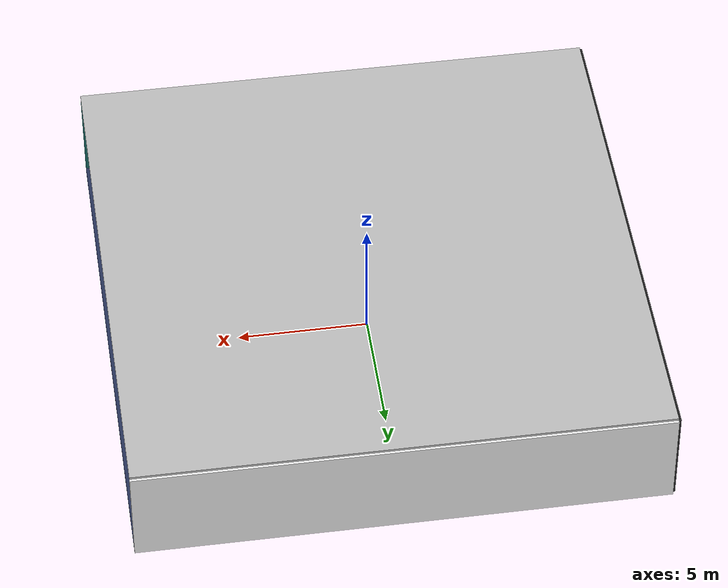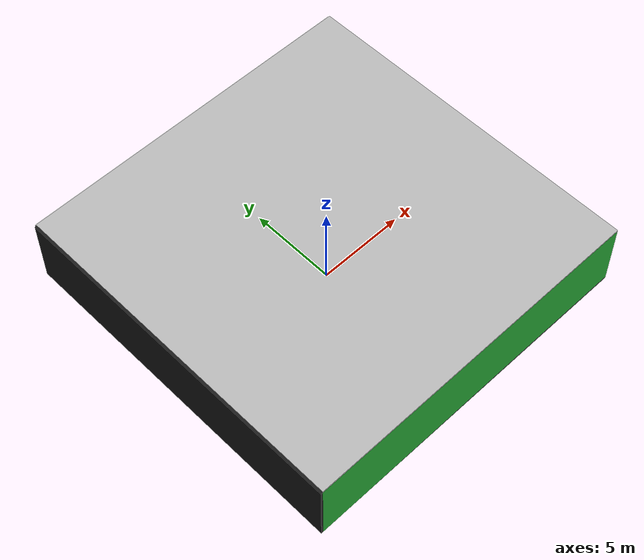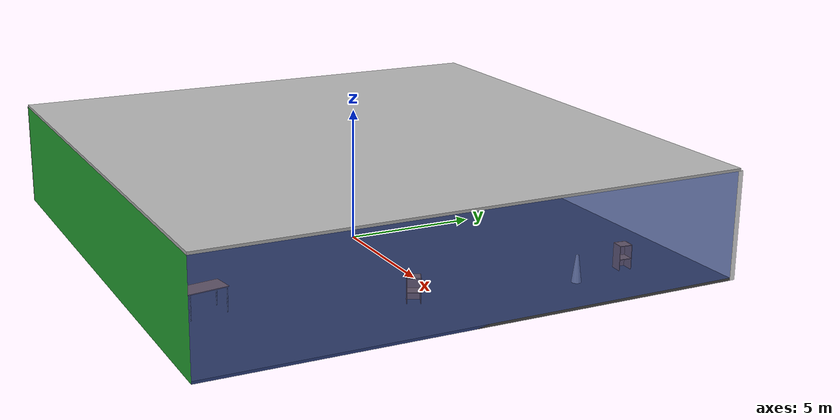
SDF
<sdf version="1.4">
 <world name="default">
  <physics type="ode">
   <max_step_size>0.001</max_step_size>
   <real_time_factor>1</real_time_factor>
   <real_time_update_rate>1000</real_time_update_rate>
   <gravity>0 0 -9.8</gravity>
  </physics>
  <scene><ambient>0.4 0.4 0.4 1</ambient><background>0.7 0.7 0.7 1</background><shadows>1</shadows></scene>
  <model name="Surrounding">
   <static>1</static>
   <link name="Ceiling">
    <collision name="Ceiling_Collision"><geometry><box><size>20 20 0.1</size></box></geometry></collision>
    <visual name="Ceiling_Visual">
     <geometry><box><size>20 20 0.1</size></box></geometry>
     <material>
      <script><uri>file://media/materials/scripts/gazebo.material</uri><name>Gazebo/PioneerBody</name></script>
     </material>
    </visual>
    <pose>0 0 4.05 0 0 0</pose>
   </link>
   <link name="Wall_South">
    <collision name="Wall_South_Collision">
     <geometry><box><size>20 0 4</size></box></geometry>
     <pose>0 0 2 0 -0 0</pose>
    </collision>
    <visual name="Wall_South_Visual">
     <pose>0 0 2 0 -0 0</pose>
     <geometry><box><size>20 0 4</size></box></geometry>
     <material>
      <script><uri>file://media/materials/scripts/gazebo.material</uri><name>Gazebo/Green</name></script>
     </material>
    </visual>
    <velocity_decay><linear>0</linear><angular>0</angular></velocity_decay>
    <pose>0 -10 0 0 -0 0</pose>
   </link>
   <link name="Wall_East">
    <collision name="Wall_21_Collision">
     <geometry><box><size>20 0 4</size></box></geometry>
     <pose>0 0 2 0 -0 0</pose>
    </collision>
    <visual name="Wall_21_Visual">
     <pose>0 0 2 0 -0 0</pose>
     <geometry><box><size>20 0 4</size></box></geometry>
     <material>
      <script><uri>file://media/materials/scripts/gazebo.material</uri><name>Gazebo/BlueTransparent</name></script>
     </material>
    </visual>
    <velocity_decay><linear>0</linear><angular>0</angular></velocity_decay>
    <pose>10 0 0 0 -0 1.5708</pose>
   </link>
   <link name="Wall_North">
    <collision name="Wall_22_Collision">
     <geometry><box><size>20 0.2 4</size></box></geometry>
     <pose>0 0 2 0 -0 0</pose>
    </collision>
    <visual name="Wall_22_Visual">
     <pose>0 0 2 0 -0 0</pose>
     <geometry><box><size>20 0.2 4</size></box></geometry>
     <material>
      <script><uri>file://media/materials/scripts/gazebo.material</uri><name>Gazebo/White</name></script>
     </material>
    </visual>
    <velocity_decay><linear>0</linear><angular>0</angular></velocity_decay>
    <pose>0 10 0 0 -0 0</pose>
   </link>
   <link name="Wall_West">
    <collision name="Wall_23_Collision">
     <geometry><box><size>20 0.2 4</size></box></geometry>
     <pose>0 0 2 0 -0 0</pose>
    </collision>
    <visual name="Wall_23_Visual">
     <pose>0 0 2 0 -0 0</pose>
     <geometry><box><size>20 0.2 4</size></box></geometry>
     <material>
      <script><uri>file://media/materials/scripts/gazebo.material</uri><name>Gazebo/Black</name></script>
     </material>
    </visual>
    <velocity_decay><linear>0</linear><angular>0</angular></velocity_decay>
    <pose>-10 0 0 0 0 -1.5708</pose>
   </link>
   <link name="Ground_link">
    <collision name="collision">
     <pose>0 0 .05 0 -0 0</pose>
     <geometry><box><size>20 20 0.1</size></box></geometry>
    </collision>
    <visual name="visual">
     <pose>0 0 .05 0 -0 0</pose>
     <geometry><box><size>20 20 0.1</size></box></geometry>
     <material>
      <script><uri>file://media/materials/scripts/gazebo.material</uri><name>Gazebo/DarkGrey</name></script>
     </material>
    </visual>
   </link>
   <static>1</static>
  </model>
  <spherical_coordinates>
   <surface_model>EARTH_WGS84</surface_model>
   <latitude_deg>0</latitude_deg>
   <longitude_deg>0</longitude_deg>
   <elevation>0</elevation>
   <heading_deg>0</heading_deg>
  </spherical_coordinates>
  <light name="lightball_0" type="diffuse">
   <diffuse>0.8 0.8 0.8 1</diffuse>
   <specular>0.2 0.2 0.2 1</specular>
   <attenuation>
    <range>100</range>
    <constant>0.7</constant>
    <linear>0.01</linear>
    <quadratic>0.001</quadratic>
   </attenuation>
   <direction>-0.5 0.1 -0.9</direction>
   <pose>-4.22511035297 8.12592527613 2.99212178298 0 0 0</pose>
  </light>
  <light name="lightball_1" type="diffuse">
   <diffuse>0.8 0.8 0.8 1</diffuse>
   <specular>0.2 0.2 0.2 1</specular>
   <attenuation>
    <range>100</range>
    <constant>0.7</constant>
    <linear>0.01</linear>
    <quadratic>0.001</quadratic>
   </attenuation>
   <direction>-0.5 0.1 -0.9</direction>
   <pose>-8.22275890097 5.43873797372 0.823738708707 0 0 0</pose>
  </light>
  <light name="lightball_2" type="diffuse">
   <diffuse>0.8 0.8 0.8 1</diffuse>
   <specular>0.2 0.2 0.2 1</specular>
   <attenuation>
    <range>100</range>
    <constant>0.7</constant>
    <linear>0.01</linear>
    <quadratic>0.001</quadratic>
   </attenuation>
   <direction>-0.5 0.1 -0.9</direction>
   <pose>-0.546312395452 2.48899868749 3.76983311599 0 0 0</pose>
  </light>
  <light name="lightball_3" type="diffuse">
   <diffuse>0.8 0.8 0.8 1</diffuse>
   <specular>0.2 0.2 0.2 1</specular>
   <attenuation>
    <range>100</range>
    <constant>0.7</constant>
    <linear>0.01</linear>
    <quadratic>0.001</quadratic>
   </attenuation>
   <direction>-0.5 0.1 -0.9</direction>
   <pose>4.55829189157 8.04195202986 3.39641112773 0 0 0</pose>
  </light>
  <light name="lightball_4" type="diffuse">
   <diffuse>0.8 0.8 0.8 1</diffuse>
   <specular>0.2 0.2 0.2 1</specular>
   <attenuation>
    <range>100</range>
    <constant>0.7</constant>
    <linear>0.01</linear>
    <quadratic>0.001</quadratic>
   </attenuation>
   <direction>-0.5 0.1 -0.9</direction>
   <pose>3.76810903556 -9.48717797923 2.10704559788 0 0 0</pose>
  </light>
  <include><uri>model://cabinet</uri><pose>-7.81845148432 -4.38738458634 0 0 0 2.98120303025</pose></include>
  <include>
   <uri>model://robocup_3Dsim_goal</uri>
   <pose>-7.58792864604 7.46368834516 0 0 0 2.5275474409</pose>
  </include>
  <include>
   <uri>model://textured_shapes</uri>
   <pose>-4.00130947866 4.86125817746 0 0 0 0.48648771399</pose>
  </include>
  <include>
   <uri>model://construction_cone</uri>
   <pose>-1.26555748786 -4.28170986349 0 0 0 0.829904490139</pose>
  </include>
  <include><uri>model://table</uri><pose>5.12338856419 -7.87972563568 0 0 0 1.71661847036</pose></include>
  <include><uri>model://cabinet</uri><pose>7.21394087241 -1.1997039338 0 0 0 2.70489491946</pose></include>
  <include>
   <uri>model://construction_cone</uri>
   <pose>7.98724198569 4.8072504765 0 0 0 3.05400546135</pose>
  </include>
  <include><uri>model://cabinet</uri><pose>7.53014471102 7.07148787218 0 0 0 3.05501381678</pose></include>
 </world>
</sdf>

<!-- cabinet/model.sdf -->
<sdf version="1.5">
  <model name="cabinet">
    <static>true</static>
    <link name="cabinet_bottom_plate">
      <inertial>
        <pose>0 0 -1 0 0 0</pose>
        <inertia>
          <ixx>2.050000</ixx>
          <ixy>0</ixy>
          <ixz>0</ixz>
          <iyy>2.050000</iyy>
          <iyz>0</iyz>
          <izz>2.050000</izz>
        </inertia>
        <mass>25.000000</mass>
      </inertial>
      <collision name="cabinet_bottom_plate_geom">
        <pose>0 0 0.010000 0 0 0</pose>
        <geometry>
          <box>
            <size>0.450000 0.450000 0.020000</size>
          </box>
        </geometry>
      </collision>
      <visual name="cabinet_bottom_plate_geom_visual">
        <pose>0 0 0.010000 0 0 0</pose>
        <geometry>
          <box>
            <size>0.450000 0.450000 0.020000</size>
          </box>
        </geometry>
        <material>
          <script>
            <uri>model://media/materials/scripts/gazebo.material</uri>
            <name>Gazebo/Wood</name>
          </script>
        </material>
      </visual>
      <collision name="cabinet_bottom_plate_geom_cabinet_back_plate">
        <pose>0.235000 0 0.510000 0 0 0</pose>
        <geometry>
          <box>
            <size>0.020000 0.450000 1.020000</size>
          </box>
        </geometry>
      </collision>
      <visual name="cabinet_bottom_plate_geom_cabinet_back_plate_visual">
        <pose>0.235000 0 0.510000 0 0 0</pose>
        <geometry>
          <box>
            <size>0.020000 0.450000 1.020000</size>
          </box>
        </geometry>
        <material>
          <script>
            <uri>model://media/materials/scripts/gazebo.material</uri>
            <name>Gazebo/Wood</name>
          </script>
        </material>
      </visual>
      <collision name="cabinet_bottom_plate_geom_cabinet_left_plate">
        <pose>0 0.235000 0.510000 0 0 0</pose>
        <geometry>
          <box>
            <size>0.450000 0.020000 1.020000</size>
          </box>
        </geometry>
      </collision>
      <visual name="cabinet_bottom_plate_geom_cabinet_left_plate_visual">
        <pose>0 0.235000 0.510000 0 0 0</pose>
        <geometry>
          <box>
            <size>0.450000 0.020000 1.020000</size>
          </box>
        </geometry>
        <material>
          <script>
            <uri>model://media/materials/scripts/gazebo.material</uri>
            <name>Gazebo/Wood</name>
          </script>
        </material>
      </visual>
      <collision name="cabinet_bottom_plate_geom_cabinet_middle_plate">
        <pose>0 0 0.510000 0 0 0</pose>
        <geometry>
          <box>
            <size>0.450000 0.450000 0.020000</size>
          </box>
        </geometry>
      </collision>
      <visual name="cabinet_bottom_plate_geom_cabinet_middle_plate_visual">
        <pose>0 0 0.510000 0 0 0</pose>
        <geometry>
          <box>
            <size>0.450000 0.450000 0.020000</size>
          </box>
        </geometry>
        <material>
          <script>
            <uri>model://media/materials/scripts/gazebo.material</uri>
            <name>Gazebo/Wood</name>
          </script>
        </material>
      </visual>
      <collision name="cabinet_bottom_plate_geom_cabinet_right_plate">
        <pose>0 -0.235000 0.510000 0 0 0</pose>
        <geometry>
          <box>
            <size>0.450000 0.020000 1.020000</size>
          </box>
        </geometry>
      </collision>
      <visual name="cabinet_bottom_plate_geom_cabinet_right_plate_visual">
        <pose>0 -0.235000 0.510000 0 0 0</pose>
        <geometry>
          <box>
            <size>0.450000 0.020000 1.020000</size>
          </box>
        </geometry>
        <material>
          <script>
            <uri>model://media/materials/scripts/gazebo.material</uri>
            <name>Gazebo/Wood</name>
          </script>
        </material>
      </visual>
      <collision name="cabinet_bottom_plate_geom_cabinet_top_plate">
        <pose>0 0 1.010000 0 0 0</pose>
        <geometry>
          <box>
            <size>0.450000 0.450000 0.020000</size>
          </box>
        </geometry>
      </collision>
      <visual name="cabinet_bottom_plate_geom_cabinet_top_plate_visual">
        <pose>0 0 1.010000 0 0 0</pose>
        <geometry>
          <box>
            <size>0.450000 0.450000 0.020000</size>
          </box>
        </geometry>
        <material>
          <script>
            <uri>model://media/materials/scripts/gazebo.material</uri>
            <name>Gazebo/Wood</name>
          </script>
        </material>
      </visual>
    </link>
  </model>
</sdf>

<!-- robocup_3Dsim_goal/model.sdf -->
<sdf version="1.5">
  <model name="robocup_3d_goal">
    <static>true</static>
    <link name="left_post">
      <pose>0 1.05 0.45 0 0 0</pose>
      <collision name="collision">
        <geometry>
          <cylinder>
            <radius>0.05</radius>
            <length>0.9</length>
          </cylinder>
        </geometry>
      </collision>
      <visual name="visual">
        <geometry>
          <cylinder>
            <radius>0.05</radius>
            <length>0.9</length>
          </cylinder>
        </geometry>
        <material>
          <script>
            <uri>file://media/materials/scripts/gazebo.material</uri>
            <name>Gazebo/ZincYellow</name>
          </script>
        </material>
      </visual>
    </link>
    <link name="left_support_horiz_lower">
      <pose>0.30 1.05 0.01 0 0 0</pose>
      <collision name="collision">
        <geometry>
          <box>
            <size>0.50 0.02 0.02</size>
          </box>
        </geometry>
      </collision>
      <visual name="visual">
        <geometry>
          <box>
            <size>0.50 0.02 0.02</size>
          </box>
        </geometry>
        <material>
          <script>
            <uri>file://media/materials/scripts/gazebo.material</uri>
            <name>Gazebo/White</name>
          </script>
        </material>
      </visual>
    </link>
    <link name="left_support_horiz_upper">
      <pose>0.30 1.05 0.79 0 0 0</pose>
      <collision name="collision">
        <geometry>
          <box>
            <size>0.50 0.02 0.02</size>
          </box>
        </geometry>
      </collision>
      <visual name="visual">
        <geometry>
          <box>
            <size>0.50 0.02 0.02</size>
          </box>
        </geometry>
        <material>
          <script>
            <uri>file://media/materials/scripts/gazebo.material</uri>
            <name>Gazebo/White</name>
          </script>
        </material>
      </visual>
    </link>
    <link name="left_support_vertical">
      <pose>0.56 1.05 0.4 0 1.5708 0</pose>
      <collision name="collision">
        <geometry>
          <box>
            <size>0.80 0.02 0.02</size>
          </box>
        </geometry>
      </collision>
      <visual name="visual">
        <geometry>
          <box>
            <size>0.80 0.02 0.02</size>
          </box>
        </geometry>
        <material>
          <script>
            <uri>file://media/materials/scripts/gazebo.material</uri>
            <name>Gazebo/White</name>
          </script>
        </material>
      </visual>
    </link>
    <link name="right_support_horiz_lower">
      <pose>0.30 -1.05 0.01 0 0 0</pose>
      <collision name="collision">
        <geometry>
          <box>
            <size>0.50 0.02 0.02</size>
          </box>
        </geometry>
      </collision>
      <visual name="visual">
        <geometry>
          <box>
            <size>0.50 0.02 0.02</size>
          </box>
        </geometry>
        <material>
          <script>
            <uri>file://media/materials/scripts/gazebo.material</uri>
            <name>Gazebo/White</name>
          </script>
        </material>
      </visual>
    </link>
    <link name="right_support_horiz_upper">
      <pose>0.30 -1.05 0.79 0 0 0</pose>
      <collision name="collision">
        <geometry>
          <box>
            <size>0.50 0.02 0.02</size>
          </box>
        </geometry>
      </collision>
      <visual name="visual">
        <geometry>
          <box>
            <size>0.50 0.02 0.02</size>
          </box>
        </geometry>
        <material>
          <script>
            <uri>file://media/materials/scripts/gazebo.material</uri>
            <name>Gazebo/White</name>
          </script>
        </material>
      </visual>
    </link>
    <link name="right_support_vertical">
      <pose>0.56 -1.05 0.4 0 1.5708 0</pose>
      <collision name="collision">
        <geometry>
          <box>
            <size>0.80 0.02 0.02</size>
          </box>
        </geometry>
      </collision>
      <visual name="visual">
        <geometry>
          <box>
            <size>0.80 0.02 0.02</size>
          </box>
        </geometry>
        <material>
          <script>
            <uri>file://media/materials/scripts/gazebo.material</uri>
            <name>Gazebo/White</name>
          </script>
        </material>
      </visual>
    </link>
    <link name="center_support_horiz_lower">
      <pose>0.56 0 0.01 0 1.5708 0</pose>
      <collision name="collision">
        <geometry>
          <box>
            <size>0.02 2.08 0.02</size>
          </box>
        </geometry>
      </collision>
      <visual name="visual">
        <geometry>
          <box>
            <size>0.02 2.08 0.02</size>
          </box>
        </geometry>
        <material>
          <script>
            <uri>file://media/materials/scripts/gazebo.material</uri>
            <name>Gazebo/White</name>
          </script>
        </material>
      </visual>
    </link>
    <link name="center_support_horiz_upper">
      <pose>0.56 0 0.79 0 1.5708 0</pose>
      <collision name="collision">
        <geometry>
          <box>
            <size>0.02 2.08 0.02</size>
          </box>
        </geometry>
      </collision>
      <visual name="visual">
        <geometry>
          <box>
            <size>0.02 2.08 0.02</size>
          </box>
        </geometry>
        <material>
          <script>
            <uri>file://media/materials/scripts/gazebo.material</uri>
            <name>Gazebo/White</name>
          </script>
        </material>
      </visual>
    </link>
    <link name="right_post">
      <pose>0 -1.05 0.45 0 0 0</pose>
      <collision name="collision">
        <geometry>
          <cylinder>
            <radius>0.05</radius>
            <length>0.9</length>
          </cylinder>
        </geometry>
      </collision>
      <visual name="visual">
        <geometry>
          <cylinder>
            <radius>0.05</radius>
            <length>0.9</length>
          </cylinder>
        </geometry>
        <material>
          <script>
            <uri>file://media/materials/scripts/gazebo.material</uri>
            <name>Gazebo/ZincYellow</name>
          </script>
        </material>
      </visual>
    </link>
    <link name="crossbar">
      <pose>0 0 0.85 1.57 1.57 0</pose>
      <collision name="collision">
        <geometry>
          <cylinder>
            <radius>0.05</radius>
            <length>2.0</length>
          </cylinder>
        </geometry>
      </collision>
      <visual name="visual">
        <geometry>
          <cylinder>
            <radius>0.05</radius>
            <length>2.0</length>
          </cylinder>
        </geometry>
        <material>
          <script>
            <uri>file://media/materials/scripts/gazebo.material</uri>
            <name>Gazebo/ZincYellow</name>
          </script>
        </material>
      </visual>
    </link>
    <link name="center_net">
      <pose>0.56 0 0.40 0 0 0</pose>
      <collision name="collision">
        <geometry>
          <box>
            <size>0.01 2.1 0.80</size>
          </box>
        </geometry>
      </collision>
      <visual name="visual">
        <geometry>
          <box>
            <size>0.01 2.1 0.80</size>
          </box>
        </geometry>
        <material>
          <script>
            <uri>model://../model_source/models/robocup09_spl_field/materials/scripts/</uri>
            <uri>model://../model_source/models/robocup09_spl_field/materials/textures/</uri>
            <name>RoboCup/Net</name>
          </script>
        </material>
      </visual>
    </link>
    <link name="left_net">
      <pose>0.30 1.05 0.40 0 0 0</pose>
      <collision name="collision">
        <geometry>
          <box>
            <size>0.50 0.01 0.76</size>
          </box>
        </geometry>
      </collision>
      <visual name="visual">
        <geometry>
          <box>
            <size>0.50 0.01 0.76</size>
          </box>
        </geometry>
        <material>
          <script>
            <uri>model://../model_source/models/robocup09_spl_field/materials/scripts/</uri>
            <uri>model://../model_source/models/robocup09_spl_field/materials/textures/</uri>
            <name>RoboCup/Net</name>
          </script>
        </material>
      </visual>
    </link>
    <link name="right_net">
      <pose>0.30 -1.05 0.40 0 0 0</pose>
      <collision name="collision">
        <geometry>
          <box>
            <size>0.50 0.01 0.76</size>
          </box>
        </geometry>
      </collision>
      <visual name="visual">
        <geometry>
          <box>
            <size>0.50 0.01 0.76</size>
          </box>
        </geometry>
        <material>
          <script>
            <uri>model://../model_source/models/robocup09_spl_field/materials/scripts/</uri>
            <uri>model://../model_source/models/robocup09_spl_field/materials/textures/</uri>
            <name>RoboCup/Net</name>
          </script>
        </material>
      </visual>
    </link>
  </model>
</sdf>

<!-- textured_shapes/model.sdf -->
<sdf version="1.6">
  <model name="textured_shapes">
    <pose>0 0 0.5 0 0 0</pose>
    <link name="box">
      <pose>0 -1.5 0 0 0 0</pose>
      <collision name="collision">
        <geometry>
          <box>
            <size>1 1 1</size>
          </box>
        </geometry>
      </collision>
      <visual name="visual">
        <geometry>
          <box>
            <size>1 1 1</size>
          </box>
        </geometry>
        <material>
          <script>
            <uri>model://../model_source/models/textured_shapes/materials/scripts</uri>
            <uri>model://../model_source/models/textured_shapes/materials/textures</uri>
            <name>TexturedShape/Squares</name>
          </script>
        </material>
      </visual>
    </link>
    <link name="sphere">
      <collision name="collision">
        <geometry>
          <sphere>
            <radius>0.5</radius>
          </sphere>
        </geometry>
      </collision>
      <visual name="visual">
        <geometry>
          <sphere>
            <radius>0.5</radius>
          </sphere>
        </geometry>
        <material>
          <script>
            <uri>model://../model_source/models/textured_shapes/materials/scripts</uri>
            <uri>model://../model_source/models/textured_shapes/materials/textures</uri>
            <name>TexturedShape/Squares</name>
          </script>
        </material>
      </visual>
    </link>
    <link name="cylinder">
      <pose>0 1.5 0 0 0 0</pose>
      <collision name="collision">
        <geometry>
          <cylinder>
            <radius>0.5</radius>
            <length>1</length>
          </cylinder>
        </geometry>
      </collision>
      <visual name="visual">
        <geometry>
          <cylinder>
            <radius>0.5</radius>
            <length>1</length>
          </cylinder>
        </geometry>
        <material>
          <script>
            <uri>model://../model_source/models/textured_shapes/materials/scripts</uri>
            <uri>model://../model_source/models/textured_shapes/materials/textures</uri>
            <name>TexturedShape/Squares</name>
          </script>
        </material>
      </visual>
    </link>
  </model>
</sdf>

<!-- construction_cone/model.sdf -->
<sdf version="1.5">
  <model name="Construction Cone">
    <link name="link">
      <collision name="collision">
        <geometry>
          <mesh>
            <scale>10 10 10</scale>
            <uri>file://isr-testbed/construction_cone/meshes/construction_cone.dae</uri>
          </mesh>
        </geometry>
      </collision>
      <visual name="visual">
        <geometry>
          <mesh>
            <scale>10 10 10</scale>
            <uri>file://isr-testbed/construction_cone/meshes/construction_cone.dae</uri>
          </mesh>
        </geometry>
      </visual>
    </link>
  </model>
</sdf>

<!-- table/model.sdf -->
<sdf version="1.5">
  <model name="table">
    <static>true</static>
    <link name="link">
      <collision name="surface">
        <pose>0 0 1.0 0 0 0</pose>
        <geometry>
          <box>
            <size>1.5 0.8 0.03</size>
          </box>
        </geometry>
        <surface>
          <friction>
            <ode>
              <mu>0.6</mu>
              <mu2>0.6</mu2>
            </ode>
          </friction>
        </surface>
      </collision>
      <visual name="visual1">
        <pose>0 0 1.0 0 0 0</pose>
        <geometry>
          <box>
            <size>1.5 0.8 0.03</size>
          </box>
        </geometry>
        <material>
          <script>
            <uri>model://media/materials/scripts/gazebo.material</uri>
            <name>Gazebo/Wood</name>
          </script>
        </material>
      </visual>
      <collision name="front_left_leg">
        <pose>0.68 0.38 0.5 0 0 0</pose>
        <geometry>
          <cylinder>
            <radius>0.02</radius>
            <length>1.0</length>
          </cylinder>
        </geometry>
      </collision>
      <visual name="front_left_leg">
        <pose>0.68 0.38 0.5 0 0 0</pose>
        <geometry>
          <cylinder>
            <radius>0.02</radius>
            <length>1.0</length>
          </cylinder>
        </geometry>
        <material>
          <script>
            <uri>model://media/materials/scripts/gazebo.material</uri>
            <name>Gazebo/Grey</name>
          </script>
        </material>
      </visual>
      <collision name="front_right_leg">
        <pose>0.68 -0.38 0.5 0 0 0</pose>
        <geometry>
          <cylinder>
            <radius>0.02</radius>
            <length>1.0</length>
          </cylinder>
        </geometry>
      </collision>
      <visual name="front_right_leg">
        <pose>0.68 -0.38 0.5 0 0 0</pose>
        <geometry>
          <cylinder>
            <radius>0.02</radius>
            <length>1.0</length>
          </cylinder>
        </geometry>
        <material>
          <script>
            <uri>model://media/materials/scripts/gazebo.material</uri>
            <name>Gazebo/Grey</name>
          </script>
        </material>
      </visual>
      <collision name="back_right_leg">
        <pose>-0.68 -0.38 0.5 0 0 0</pose>
        <geometry>
          <cylinder>
            <radius>0.02</radius>
            <length>1.0</length>
          </cylinder>
        </geometry>
      </collision>
      <visual name="back_right_leg">
        <pose>-0.68 -0.38 0.5 0 0 0</pose>
        <geometry>
          <cylinder>
            <radius>0.02</radius>
            <length>1.0</length>
          </cylinder>
        </geometry>
        <material>
          <script>
            <uri>model://media/materials/scripts/gazebo.material</uri>
            <name>Gazebo/Grey</name>
          </script>
        </material>
      </visual>
      <collision name="back_left_leg">
        <pose>-0.68 0.38 0.5 0 0 0</pose>
        <geometry>
          <cylinder>
            <radius>0.02</radius>
            <length>1.0</length>
          </cylinder>
        </geometry>
      </collision>
      <visual name="back_left_leg">
        <pose>-0.68 0.38 0.5 0 0 0</pose>
        <geometry>
          <cylinder>
            <radius>0.02</radius>
            <length>1.0</length>
          </cylinder>
        </geometry>
        <material>
          <script>
            <uri>model://media/materials/scripts/gazebo.material</uri>
            <name>Gazebo/Grey</name>
          </script>
        </material>
      </visual>
    </link>
  </model>
</sdf>
